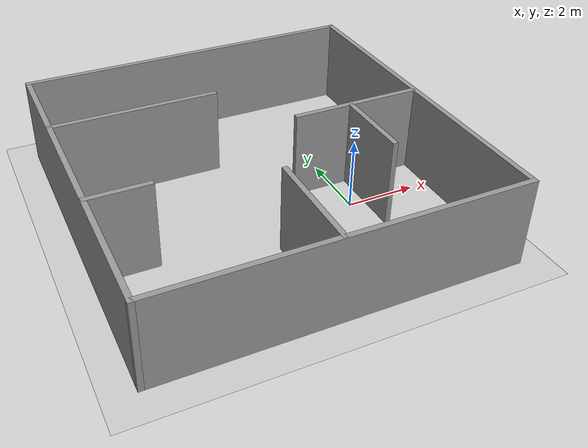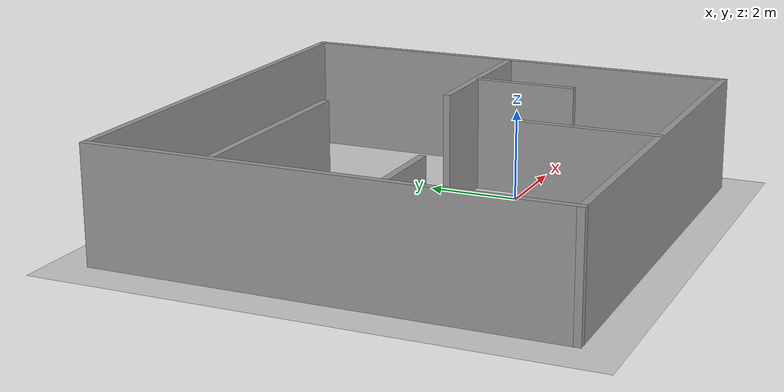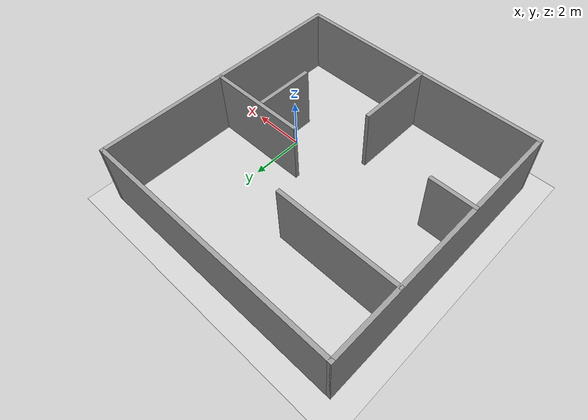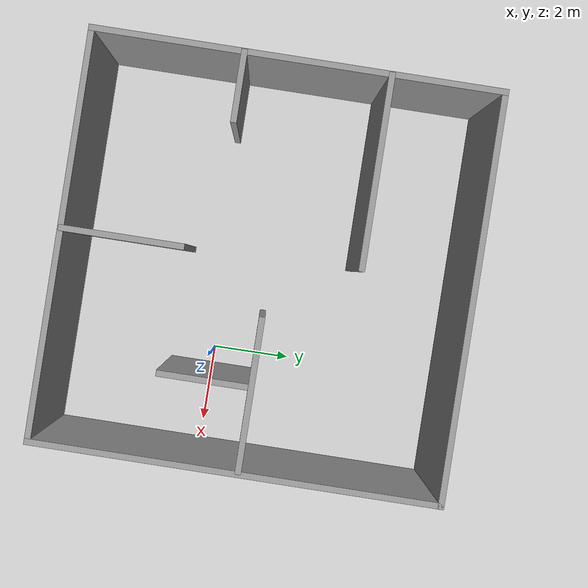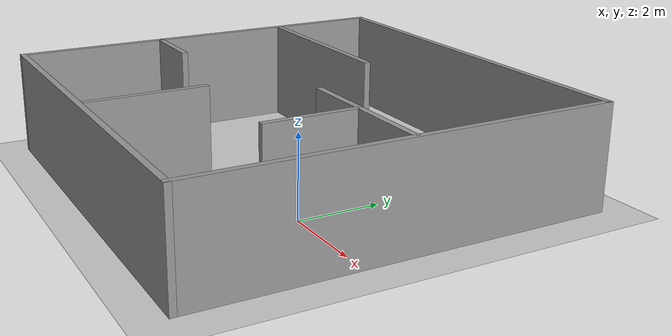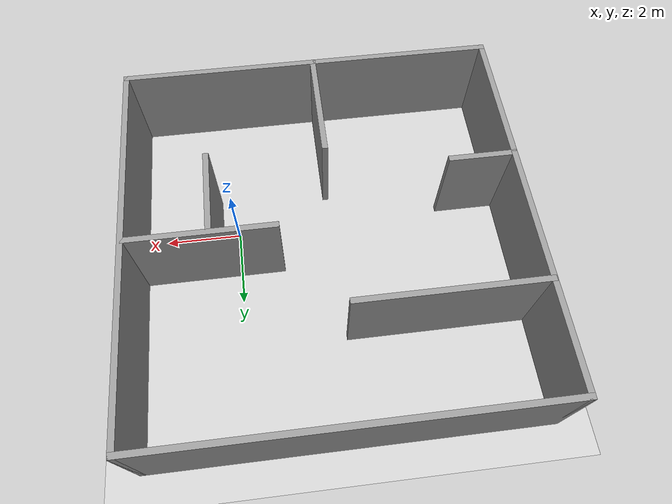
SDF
<sdf version="1.6">
 <world name="default">
  <light name="sun" type="directional">
   <pose>0 0 10 0 -0 0</pose>
   <diffuse>0.8 0.8 0.8 1</diffuse>
   <specular>0.2 0.2 0.2 1</specular>
   <attenuation>
    <range>1000</range>
    <constant>0.9</constant>
    <linear>0.01</linear>
    <quadratic>0.001</quadratic>
   </attenuation>
   <direction>-0.5 0.1 -0.9</direction>
  </light>
  <model name="ground_plane">
   <static>1</static>
   <link name="link">
    <collision name="collision">
     <geometry><plane><normal>0 0 1</normal><size>100 100</size></plane></geometry>
     <surface><friction><ode><mu>100</mu><mu2>50</mu2></ode></friction></surface>
    </collision>
    <visual name="visual">
     <cast_shadows>0</cast_shadows>
     <geometry><plane><normal>0 0 1</normal><size>100 100</size></plane></geometry>
     <material>
      <script><uri>file://media/materials/scripts/gazebo.material</uri><name>Gazebo/Grey</name></script>
     </material>
    </visual>
   </link>
  </model>
  <gravity>0 0 -9.8</gravity>
  <magnetic_field>6e-06 2.3e-05 -4.2e-05</magnetic_field>
  <atmosphere type="adiabatic"/>
  <physics name="default_physics" default="0" type="ode">
   <max_step_size>0.001</max_step_size>
   <real_time_factor>1</real_time_factor>
   <real_time_update_rate>1000</real_time_update_rate>
  </physics>
  <scene><ambient>0.4 0.4 0.4 1</ambient><background>0.7 0.7 0.7 1</background><shadows>1</shadows></scene>
  <spherical_coordinates>
   <surface_model>EARTH_WGS84</surface_model>
   <latitude_deg>0</latitude_deg>
   <longitude_deg>0</longitude_deg>
   <elevation>0</elevation>
   <heading_deg>0</heading_deg>
  </spherical_coordinates>
  <model name="world2">
   <pose>-2.35072 1.06521 0 0 -0 0</pose>
   <link name="Wall_11">
    <collision name="Wall_11_Collision">
     <geometry><box><size>4.75 0.15 2.5</size></box></geometry>
     <pose>0 0 1.25 0 -0 0</pose>
    </collision>
    <visual name="Wall_11_Visual">
     <pose>0 0 1.25 0 -0 0</pose>
     <geometry><box><size>4.75 0.15 2.5</size></box></geometry>
     <material>
      <script><uri>file://media/materials/scripts/gazebo.material</uri><name>Gazebo/Grey</name></script>
      <ambient>1 1 1 1</ambient>
     </material>
     <meta><layer>0</layer></meta>
    </visual>
    <pose>-2.60803 2.22693 0 0 -0 0</pose>
   </link>
   <link name="Wall_13">
    <collision name="Wall_13_Collision">
     <geometry><box><size>3 0.15 2.5</size></box></geometry>
     <pose>0 0 1.25 0 -0 0</pose>
    </collision>
    <visual name="Wall_13_Visual">
     <pose>0 0 1.25 0 -0 0</pose>
     <geometry><box><size>3 0.15 2.5</size></box></geometry>
     <material>
      <script><uri>file://media/materials/scripts/gazebo.material</uri><name>Gazebo/Grey</name></script>
      <ambient>1 1 1 1</ambient>
     </material>
     <meta><layer>0</layer></meta>
    </visual>
    <pose>-0.166547 -3.47559 0 0 -0 1.5708</pose>
   </link>
   <link name="Wall_15">
    <collision name="Wall_15_Collision">
     <geometry><box><size>3.75 0.15 2.5</size></box></geometry>
     <pose>0 0 1.25 0 -0 0</pose>
    </collision>
    <visual name="Wall_15_Visual">
     <pose>0 0 1.25 0 -0 0</pose>
     <geometry><box><size>3.75 0.15 2.5</size></box></geometry>
     <material>
      <script><uri>file://media/materials/scripts/gazebo.material</uri><name>Gazebo/Grey</name></script>
      <ambient>1 1 1 1</ambient>
     </material>
     <meta><layer>0</layer></meta>
    </visual>
    <pose>3.05025 0.085615 0 0 -0 3.14159</pose>
   </link>
   <link name="Wall_17">
    <collision name="Wall_17_Collision">
     <geometry><box><size>1.75 0.15 2.5</size></box></geometry>
     <pose>0 0 1.25 0 -0 0</pose>
    </collision>
    <visual name="Wall_17_Visual">
     <pose>0 0 1.25 0 -0 0</pose>
     <geometry><box><size>1.75 0.15 2.5</size></box></geometry>
     <material>
      <script><uri>file://media/materials/scripts/gazebo.material</uri><name>Gazebo/Grey</name></script>
      <ambient>1 1 1 1</ambient>
     </material>
     <meta><layer>0</layer></meta>
    </visual>
    <pose>-4.10803 -1.29095 0 0 -0 0</pose>
   </link>
   <link name="Wall_20">
    <collision name="Wall_20_Collision">
     <geometry><box><size>2.25 0.15 2.5</size></box></geometry>
     <pose>0 0 1.25 0 -0 0</pose>
    </collision>
    <visual name="Wall_20_Visual">
     <pose>0 0 1.25 0 -0 0</pose>
     <geometry><box><size>2.25 0.15 2.5</size></box></geometry>
     <material>
      <script><uri>file://media/materials/scripts/gazebo.material</uri><name>Gazebo/Grey</name></script>
      <ambient>1 1 1 1</ambient>
     </material>
     <meta><layer>0</layer></meta>
    </visual>
    <pose>2.86189 -1.05616 0 0 0 -1.5708</pose>
   </link>
   <link name="Wall_3">
    <collision name="Wall_3_Collision">
     <geometry><box><size>10 0.15 2.5</size></box></geometry>
     <pose>0 0 1.25 0 -0 0</pose>
    </collision>
    <visual name="Wall_3_Visual">
     <pose>0 0 1.25 0 -0 0</pose>
     <geometry><box><size>10 0.15 2.5</size></box></geometry>
     <material>
      <script><uri>file://media/materials/scripts/gazebo.material</uri><name>Gazebo/Grey</name></script>
      <ambient>1 1 1 1</ambient>
     </material>
     <meta><layer>0</layer></meta>
    </visual>
    <pose>-4.925 0 0 0 -0 1.5708</pose>
   </link>
   <link name="Wall_5">
    <collision name="Wall_5_Collision">
     <geometry><box><size>10 0.15 2.5</size></box></geometry>
     <pose>0 0 1.25 0 -0 0</pose>
    </collision>
    <visual name="Wall_5_Visual">
     <pose>0 0 1.25 0 -0 0</pose>
     <geometry><box><size>10 0.15 2.5</size></box></geometry>
     <material>
      <script><uri>file://media/materials/scripts/gazebo.material</uri><name>Gazebo/Grey</name></script>
      <ambient>1 1 1 1</ambient>
     </material>
     <meta><layer>0</layer></meta>
    </visual>
    <pose>0 4.925 0 0 -0 0</pose>
   </link>
   <link name="Wall_6">
    <collision name="Wall_6_Collision">
     <geometry><box><size>0.15 0.15 2.5</size></box></geometry>
     <pose>0 0 1.25 0 -0 0</pose>
    </collision>
    <visual name="Wall_6_Visual">
     <pose>0 0 1.25 0 -0 0</pose>
     <geometry><box><size>0.15 0.15 2.5</size></box></geometry>
     <material>
      <script><uri>file://media/materials/scripts/gazebo.material</uri><name>Gazebo/Grey</name></script>
      <ambient>1 1 1 1</ambient>
     </material>
     <meta><layer>0</layer></meta>
    </visual>
    <pose>4.925 4.925 0 0 -0 0</pose>
   </link>
   <link name="Wall_8">
    <collision name="Wall_8_Collision">
     <geometry><box><size>10 0.15 2.5</size></box></geometry>
     <pose>0 0 1.25 0 -0 0</pose>
    </collision>
    <visual name="Wall_8_Visual">
     <pose>0 0 1.25 0 -0 0</pose>
     <geometry><box><size>10 0.15 2.5</size></box></geometry>
     <material>
      <script><uri>file://media/materials/scripts/gazebo.material</uri><name>Gazebo/Grey</name></script>
      <ambient>1 1 1 1</ambient>
     </material>
     <meta><layer>0</layer></meta>
    </visual>
    <pose>4.925 0 0 0 0 -1.5708</pose>
   </link>
   <link name="Wall_9">
    <collision name="Wall_9_Collision">
     <geometry><box><size>10 0.15 2.5</size></box></geometry>
     <pose>0 0 1.25 0 -0 0</pose>
    </collision>
    <visual name="Wall_9_Visual">
     <pose>0 0 1.25 0 -0 0</pose>
     <geometry><box><size>10 0.15 2.5</size></box></geometry>
     <material>
      <script><uri>file://media/materials/scripts/gazebo.material</uri><name>Gazebo/Grey</name></script>
      <ambient>1 1 1 1</ambient>
     </material>
     <meta><layer>0</layer></meta>
    </visual>
    <pose>0 -4.925 0 0 -0 3.14159</pose>
   </link>
   <static>1</static>
  </model>
 </world>
</sdf>
